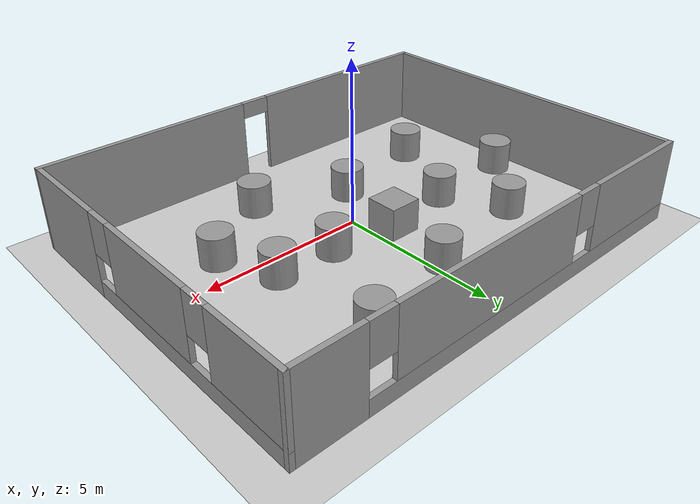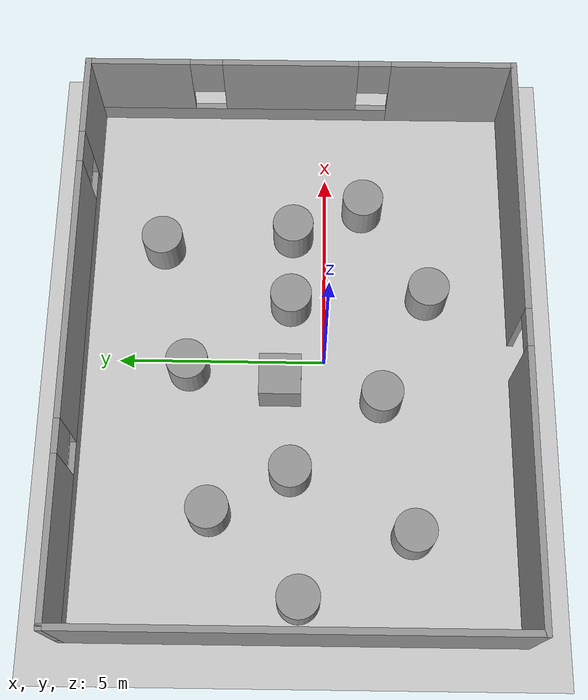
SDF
<sdf version="1.6">
 <world name="default">
  <light name="sun" type="directional">
   <pose>0 0 10 0 -0 0</pose>
   <diffuse>0.8 0.8 0.8 1</diffuse>
   <specular>0.2 0.2 0.2 1</specular>
   <attenuation>
    <range>1000</range>
    <constant>0.9</constant>
    <linear>0.01</linear>
    <quadratic>0.001</quadratic>
   </attenuation>
   <direction>-0.5 0.1 -0.9</direction>
  </light>
  <model name="ground_plane">
   <static>1</static>
   <link name="link">
    <collision name="collision">
     <geometry><plane><normal>0 0 1</normal><size>100 100</size></plane></geometry>
     <surface><friction><ode><mu>100</mu><mu2>50</mu2></ode></friction></surface>
    </collision>
    <visual name="visual">
     <cast_shadows>0</cast_shadows>
     <geometry><plane><normal>0 0 1</normal><size>100 100</size></plane></geometry>
     <material>
      <script><uri>file://media/materials/scripts/gazebo.material</uri><name>Gazebo/Grey</name></script>
     </material>
    </visual>
    <velocity_decay><linear>0</linear><angular>0</angular></velocity_decay>
   </link>
  </model>
  <physics name="default_physics" default="0" type="ode">
   <max_step_size>0.001</max_step_size>
   <real_time_factor>1</real_time_factor>
   <real_time_update_rate>1000</real_time_update_rate>
  </physics>
  <scene><ambient>0.4 0.4 0.4 1</ambient><background>0.7 0.7 0.7 1</background><shadows>1</shadows></scene>
  <spherical_coordinates>
   <surface_model>EARTH_WGS84</surface_model>
   <latitude_deg>0</latitude_deg>
   <longitude_deg>0</longitude_deg>
   <elevation>0</elevation>
   <heading_deg>0</heading_deg>
  </spherical_coordinates>
  <model name="room_">
   <pose>0.14 0.655 0 0 -0 0</pose>
   <link name="Wall_0">
    <pose>0 -5.225 0 0 -0 3.14159</pose>
    <visual name="Wall_0_Visual_0">
     <pose>-3.61983 0 1.25 0 -0 0</pose>
     <geometry><box><size>6.51034 0.15 2.5</size></box></geometry>
     <material>
      <script><uri>file://media/materials/scripts/gazebo.material</uri><name>Gazebo/Grey</name></script>
      <ambient>1 1 1 1</ambient>
     </material>
    </visual>
    <collision name="Wall_0_Collision_0">
     <geometry><box><size>6.51034 0.15 2.5</size></box></geometry>
     <pose>-3.61983 0 1.25 0 -0 0</pose>
    </collision>
    <visual name="Wall_0_Visual_1">
     <pose>3.70517 0 1.25 0 -0 0</pose>
     <geometry><box><size>6.33966 0.15 2.5</size></box></geometry>
     <material>
      <script><uri>file://media/materials/scripts/gazebo.material</uri><name>Gazebo/Grey</name></script>
      <ambient>1 1 1 1</ambient>
     </material>
    </visual>
    <collision name="Wall_0_Collision_1">
     <geometry><box><size>6.33966 0.15 2.5</size></box></geometry>
     <pose>3.70517 0 1.25 0 -0 0</pose>
    </collision>
    <visual name="Wall_0_Visual_2">
     <pose>0.085344 0 2.25 0 -0 0</pose>
     <geometry><box><size>0.9 0.15 0.5</size></box></geometry>
     <material>
      <script><uri>file://media/materials/scripts/gazebo.material</uri><name>Gazebo/Grey</name></script>
      <ambient>1 1 1 1</ambient>
     </material>
    </visual>
    <collision name="Wall_0_Collision_2">
     <geometry><box><size>0.9 0.15 0.5</size></box></geometry>
     <pose>0.085344 0 2.25 0 -0 0</pose>
    </collision>
   </link>
   <link name="Wall_3">
    <pose>6.8 0.05 0 0 -0 1.5708</pose>
    <visual name="Wall_3_Visual_0">
     <pose>-3.76113 0 1.25 0 -0 0</pose>
     <geometry><box><size>2.97774 0.15 2.5</size></box></geometry>
     <material>
      <script><uri>file://media/materials/scripts/gazebo.material</uri><name>Gazebo/Grey</name></script>
      <ambient>1 1 1 1</ambient>
     </material>
    </visual>
    <collision name="Wall_3_Collision_0">
     <geometry><box><size>2.97774 0.15 2.5</size></box></geometry>
     <pose>-3.76113 0 1.25 0 -0 0</pose>
    </collision>
    <visual name="Wall_3_Visual_1">
     <pose>1.48887 0 0.25 0 -0 0</pose>
     <geometry><box><size>7.52226 0.15 0.5</size></box></geometry>
     <material>
      <script><uri>file://media/materials/scripts/gazebo.material</uri><name>Gazebo/Grey</name></script>
      <ambient>1 1 1 1</ambient>
     </material>
    </visual>
    <collision name="Wall_3_Collision_1">
     <geometry><box><size>7.52226 0.15 0.5</size></box></geometry>
     <pose>1.48887 0 0.25 0 -0 0</pose>
    </collision>
    <visual name="Wall_3_Visual_2">
     <pose>0.202555 0 1.5 0 -0 0</pose>
     <geometry><box><size>3.34963 0.15 2</size></box></geometry>
     <material>
      <script><uri>file://media/materials/scripts/gazebo.material</uri><name>Gazebo/Grey</name></script>
      <ambient>1 1 1 1</ambient>
     </material>
    </visual>
    <collision name="Wall_3_Collision_2">
     <geometry><box><size>3.34963 0.15 2</size></box></geometry>
     <pose>0.202555 0 1.5 0 -0 0</pose>
    </collision>
    <visual name="Wall_3_Visual_3">
     <pose>3.96368 0 1.5 0 -0 0</pose>
     <geometry><box><size>2.57263 0.15 2</size></box></geometry>
     <material>
      <script><uri>file://media/materials/scripts/gazebo.material</uri><name>Gazebo/Grey</name></script>
      <ambient>1 1 1 1</ambient>
     </material>
    </visual>
    <collision name="Wall_3_Collision_3">
     <geometry><box><size>2.57263 0.15 2</size></box></geometry>
     <pose>3.96368 0 1.5 0 -0 0</pose>
    </collision>
    <visual name="Wall_3_Visual_4">
     <pose>-1.87226 0 1.9 0 -0 0</pose>
     <geometry><box><size>0.8 0.15 1.2</size></box></geometry>
     <material>
      <script><uri>file://media/materials/scripts/gazebo.material</uri><name>Gazebo/Grey</name></script>
      <ambient>1 1 1 1</ambient>
     </material>
    </visual>
    <collision name="Wall_3_Collision_4">
     <geometry><box><size>0.8 0.15 1.2</size></box></geometry>
     <pose>-1.87226 0 1.9 0 -0 0</pose>
    </collision>
    <visual name="Wall_3_Visual_5">
     <pose>2.27737 0 1.9 0 -0 0</pose>
     <geometry><box><size>0.8 0.15 1.2</size></box></geometry>
     <material>
      <script><uri>file://media/materials/scripts/gazebo.material</uri><name>Gazebo/Grey</name></script>
      <ambient>1 1 1 1</ambient>
     </material>
    </visual>
    <collision name="Wall_3_Collision_5">
     <geometry><box><size>0.8 0.15 1.2</size></box></geometry>
     <pose>2.27737 0 1.9 0 -0 0</pose>
    </collision>
   </link>
   <link name="Wall_6">
    <pose>0 5.225 0 0 -0 3.14159</pose>
    <visual name="Wall_6_Visual_0">
     <pose>-5.84255 0 1.25 0 -0 0</pose>
     <geometry><box><size>2.06491 0.15 2.5</size></box></geometry>
     <material>
      <script><uri>file://media/materials/scripts/gazebo.material</uri><name>Gazebo/Grey</name></script>
      <ambient>1 1 1 1</ambient>
     </material>
    </visual>
    <collision name="Wall_6_Collision_0">
     <geometry><box><size>2.06491 0.15 2.5</size></box></geometry>
     <pose>-5.84255 0 1.25 0 -0 0</pose>
    </collision>
    <visual name="Wall_6_Visual_1">
     <pose>1.03245 0 0.25 0 -0 0</pose>
     <geometry><box><size>11.6851 0.15 0.5</size></box></geometry>
     <material>
      <script><uri>file://media/materials/scripts/gazebo.material</uri><name>Gazebo/Grey</name></script>
      <ambient>1 1 1 1</ambient>
     </material>
    </visual>
    <collision name="Wall_6_Collision_1">
     <geometry><box><size>11.6851 0.15 0.5</size></box></geometry>
     <pose>1.03245 0 0.25 0 -0 0</pose>
    </collision>
    <visual name="Wall_6_Visual_2">
     <pose>-0.832363 0 1.5 0 -0 0</pose>
     <geometry><box><size>6.35545 0.15 2</size></box></geometry>
     <material>
      <script><uri>file://media/materials/scripts/gazebo.material</uri><name>Gazebo/Grey</name></script>
      <ambient>1 1 1 1</ambient>
     </material>
    </visual>
    <collision name="Wall_6_Collision_2">
     <geometry><box><size>6.35545 0.15 2</size></box></geometry>
     <pose>-0.832363 0 1.5 0 -0 0</pose>
    </collision>
    <visual name="Wall_6_Visual_3">
     <pose>5.01018 0 1.5 0 -0 0</pose>
     <geometry><box><size>3.72964 0.15 2</size></box></geometry>
     <material>
      <script><uri>file://media/materials/scripts/gazebo.material</uri><name>Gazebo/Grey</name></script>
      <ambient>1 1 1 1</ambient>
     </material>
    </visual>
    <collision name="Wall_6_Collision_3">
     <geometry><box><size>3.72964 0.15 2</size></box></geometry>
     <pose>5.01018 0 1.5 0 -0 0</pose>
    </collision>
    <visual name="Wall_6_Visual_4">
     <pose>-4.41009 0 1.9 0 -0 0</pose>
     <geometry><box><size>0.8 0.15 1.2</size></box></geometry>
     <material>
      <script><uri>file://media/materials/scripts/gazebo.material</uri><name>Gazebo/Grey</name></script>
      <ambient>1 1 1 1</ambient>
     </material>
    </visual>
    <collision name="Wall_6_Collision_4">
     <geometry><box><size>0.8 0.15 1.2</size></box></geometry>
     <pose>-4.41009 0 1.9 0 -0 0</pose>
    </collision>
    <visual name="Wall_6_Visual_5">
     <pose>2.74536 0 1.9 0 -0 0</pose>
     <geometry><box><size>0.8 0.15 1.2</size></box></geometry>
     <material>
      <script><uri>file://media/materials/scripts/gazebo.material</uri><name>Gazebo/Grey</name></script>
      <ambient>1 1 1 1</ambient>
     </material>
    </visual>
    <collision name="Wall_6_Collision_5">
     <geometry><box><size>0.8 0.15 1.2</size></box></geometry>
     <pose>2.74536 0 1.9 0 -0 0</pose>
    </collision>
   </link>
   <link name="Wall_7">
    <collision name="Wall_7_Collision">
     <geometry><box><size>10.6 0.15 2.5</size></box></geometry>
     <pose>0 0 1.25 0 -0 0</pose>
    </collision>
    <visual name="Wall_7_Visual">
     <pose>0 0 1.25 0 -0 0</pose>
     <geometry><box><size>10.6 0.15 2.5</size></box></geometry>
     <material>
      <script><uri>file://media/materials/scripts/gazebo.material</uri><name>Gazebo/Grey</name></script>
      <ambient>1 1 1 1</ambient>
     </material>
    </visual>
    <pose>-6.8 0 0 0 0 -1.5708</pose>
   </link>
   <static>1</static>
  </model>
  <gravity>0 0 -9.8</gravity>
  <magnetic_field>6e-06 2.3e-05 -4.2e-05</magnetic_field>
  <atmosphere type="adiabatic"/>
  <model name="unit_cylinder_0">
   <pose>-3.79977 2.65482 0.499993 -3e-06 -4e-06 -0</pose>
   <link name="link">
    <inertial>
     <mass>1</mass>
     <inertia><ixx>0.145833</ixx><ixy>0</ixy><ixz>0</ixz><iyy>0.145833</iyy><iyz>0</iyz><izz>0.125</izz></inertia>
    </inertial>
    <collision name="collision">
     <geometry><cylinder><radius>0.5</radius><length>1</length></cylinder></geometry>
    </collision>
    <visual name="visual">
     <geometry><cylinder><radius>0.5</radius><length>1</length></cylinder></geometry>
     <material>
      <script><name>Gazebo/Grey</name><uri>file://media/materials/scripts/gazebo.material</uri></script>
     </material>
    </visual>
   </link>
  </model>
  <model name="unit_cylinder_1">
   <pose>-2.83647 0.785137 0.499993 -3e-06 -4e-06 -0</pose>
   <link name="link">
    <inertial>
     <mass>1</mass>
     <inertia><ixx>0.145833</ixx><ixy>0</ixy><ixz>0</ixz><iyy>0.145833</iyy><iyz>0</iyz><izz>0.125</izz></inertia>
    </inertial>
    <collision name="collision">
     <geometry><cylinder><radius>0.5</radius><length>1</length></cylinder></geometry>
    </collision>
    <visual name="visual">
     <geometry><cylinder><radius>0.5</radius><length>1</length></cylinder></geometry>
     <material>
      <script><name>Gazebo/Grey</name><uri>file://media/materials/scripts/gazebo.material</uri></script>
     </material>
    </visual>
   </link>
  </model>
  <model name="unit_cylinder_2">
   <pose>-4.27104 -2.06769 0.499993 -3e-06 -4e-06 -0</pose>
   <link name="link">
    <inertial>
     <mass>1</mass>
     <inertia><ixx>0.145833</ixx><ixy>0</ixy><ixz>0</ixz><iyy>0.145833</iyy><iyz>0</iyz><izz>0.125</izz></inertia>
    </inertial>
    <collision name="collision">
     <geometry><cylinder><radius>0.5</radius><length>1</length></cylinder></geometry>
    </collision>
    <visual name="visual">
     <geometry><cylinder><radius>0.5</radius><length>1</length></cylinder></geometry>
     <material>
      <script><name>Gazebo/Grey</name><uri>file://media/materials/scripts/gazebo.material</uri></script>
     </material>
    </visual>
   </link>
  </model>
  <model name="unit_cylinder_3">
   <pose>1.66209 -2.5094 0.499993 -3e-06 -4e-06 -0</pose>
   <link name="link">
    <inertial>
     <mass>1</mass>
     <inertia><ixx>0.145833</ixx><ixy>0</ixy><ixz>0</ixz><iyy>0.145833</iyy><iyz>0</iyz><izz>0.125</izz></inertia>
    </inertial>
    <collision name="collision">
     <geometry><cylinder><radius>0.5</radius><length>1</length></cylinder></geometry>
    </collision>
    <visual name="visual">
     <geometry><cylinder><radius>0.5</radius><length>1</length></cylinder></geometry>
     <material>
      <script><name>Gazebo/Grey</name><uri>file://media/materials/scripts/gazebo.material</uri></script>
     </material>
    </visual>
   </link>
  </model>
  <model name="unit_cylinder_4">
   <pose>-0.261737 3.27097 0.499993 -3e-06 -4e-06 -0</pose>
   <link name="link">
    <inertial>
     <mass>1</mass>
     <inertia><ixx>0.145833</ixx><ixy>0</ixy><ixz>0</ixz><iyy>0.145833</iyy><iyz>0</iyz><izz>0.125</izz></inertia>
    </inertial>
    <collision name="collision">
     <geometry><cylinder><radius>0.5</radius><length>1</length></cylinder></geometry>
    </collision>
    <visual name="visual">
     <geometry><cylinder><radius>0.5</radius><length>1</length></cylinder></geometry>
     <material>
      <script><name>Gazebo/Grey</name><uri>file://media/materials/scripts/gazebo.material</uri></script>
     </material>
    </visual>
   </link>
  </model>
  <model name="unit_cylinder_5">
   <pose>1.45386 0.824558 0.499993 -3e-06 -4e-06 -0</pose>
   <link name="link">
    <inertial>
     <mass>1</mass>
     <inertia><ixx>0.145833</ixx><ixy>0</ixy><ixz>0</ixz><iyy>0.145833</iyy><iyz>0</iyz><izz>0.125</izz></inertia>
    </inertial>
    <collision name="collision">
     <geometry><cylinder><radius>0.5</radius><length>1</length></cylinder></geometry>
    </collision>
    <visual name="visual">
     <geometry><cylinder><radius>0.5</radius><length>1</length></cylinder></geometry>
     <material>
      <script><name>Gazebo/Grey</name><uri>file://media/materials/scripts/gazebo.material</uri></script>
     </material>
    </visual>
   </link>
  </model>
  <model name="unit_cylinder_6">
   <pose>4.04511 -0.931645 0.499993 -3e-06 -4e-06 -0</pose>
   <link name="link">
    <inertial>
     <mass>1</mass>
     <inertia><ixx>0.145833</ixx><ixy>0</ixy><ixz>0</ixz><iyy>0.145833</iyy><iyz>0</iyz><izz>0.125</izz></inertia>
    </inertial>
    <collision name="collision">
     <geometry><cylinder><radius>0.5</radius><length>1</length></cylinder></geometry>
    </collision>
    <visual name="visual">
     <geometry><cylinder><radius>0.5</radius><length>1</length></cylinder></geometry>
     <material>
      <script><name>Gazebo/Grey</name><uri>file://media/materials/scripts/gazebo.material</uri></script>
     </material>
    </visual>
   </link>
  </model>
  <model name="unit_cylinder_7">
   <pose>3.32474 0.797014 0.499993 -3e-06 -4e-06 -0</pose>
   <link name="link">
    <inertial>
     <mass>1</mass>
     <inertia><ixx>0.145833</ixx><ixy>0</ixy><ixz>0</ixz><iyy>0.145833</iyy><iyz>0</iyz><izz>0.125</izz></inertia>
    </inertial>
    <collision name="collision">
     <geometry><cylinder><radius>0.5</radius><length>1</length></cylinder></geometry>
    </collision>
    <visual name="visual">
     <geometry><cylinder><radius>0.5</radius><length>1</length></cylinder></geometry>
     <material>
      <script><name>Gazebo/Grey</name><uri>file://media/materials/scripts/gazebo.material</uri></script>
     </material>
    </visual>
   </link>
  </model>
  <model name="unit_cylinder_8">
   <pose>2.96635 4.02166 0.499993 -3e-06 -4e-06 -0</pose>
   <link name="link">
    <inertial>
     <mass>1</mass>
     <inertia><ixx>0.145833</ixx><ixy>0</ixy><ixz>0</ixz><iyy>0.145833</iyy><iyz>0</iyz><izz>0.125</izz></inertia>
    </inertial>
    <collision name="collision">
     <geometry><cylinder><radius>0.5</radius><length>1</length></cylinder></geometry>
    </collision>
    <visual name="visual">
     <geometry><cylinder><radius>0.5</radius><length>1</length></cylinder></geometry>
     <material>
      <script><name>Gazebo/Grey</name><uri>file://media/materials/scripts/gazebo.material</uri></script>
     </material>
    </visual>
   </link>
  </model>
  <model name="unit_cylinder_9">
   <pose>-5.77711 0.558808 0.499993 -3e-06 -4e-06 -0</pose>
   <link name="link">
    <inertial>
     <mass>1</mass>
     <inertia><ixx>0.145833</ixx><ixy>0</ixy><ixz>0</ixz><iyy>0.145833</iyy><iyz>0</iyz><izz>0.125</izz></inertia>
    </inertial>
    <collision name="collision">
     <geometry><cylinder><radius>0.5</radius><length>1</length></cylinder></geometry>
    </collision>
    <visual name="visual">
     <geometry><cylinder><radius>0.5</radius><length>1</length></cylinder></geometry>
     <material>
      <script><name>Gazebo/Grey</name><uri>file://media/materials/scripts/gazebo.material</uri></script>
     </material>
    </visual>
   </link>
  </model>
  <model name="unit_cylinder_10">
   <pose>-1.00083 -1.36292 0.499993 -3e-06 -4e-06 -0</pose>
   <link name="link">
    <inertial>
     <mass>1</mass>
     <inertia><ixx>0.145833</ixx><ixy>0</ixy><ixz>0</ixz><iyy>0.145833</iyy><iyz>0</iyz><izz>0.125</izz></inertia>
    </inertial>
    <collision name="collision">
     <geometry><cylinder><radius>0.5</radius><length>1</length></cylinder></geometry>
    </collision>
    <visual name="visual">
     <geometry><cylinder><radius>0.5</radius><length>1</length></cylinder></geometry>
     <material>
      <script><name>Gazebo/Grey</name><uri>file://media/materials/scripts/gazebo.material</uri></script>
     </material>
    </visual>
   </link>
  </model>
  <model name="unit_box_0">
   <pose>-0.608984 1.05412 0.5 0 -0 0</pose>
   <link name="link">
    <inertial>
     <mass>1</mass>
     <inertia>
      <ixx>0.166667</ixx>
      <ixy>0</ixy>
      <ixz>0</ixz>
      <iyy>0.166667</iyy>
      <iyz>0</iyz>
      <izz>0.166667</izz>
     </inertia>
    </inertial>
    <collision name="collision"><geometry><box><size>1 1 1</size></box></geometry></collision>
    <visual name="visual">
     <geometry><box><size>1 1 1</size></box></geometry>
     <material>
      <script><name>Gazebo/Grey</name><uri>file://media/materials/scripts/gazebo.material</uri></script>
     </material>
    </visual>
   </link>
  </model>
 </world>
</sdf>
